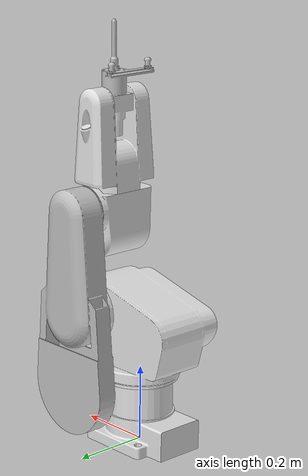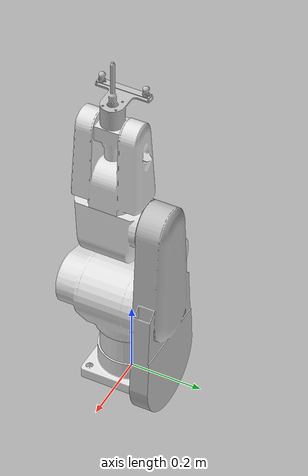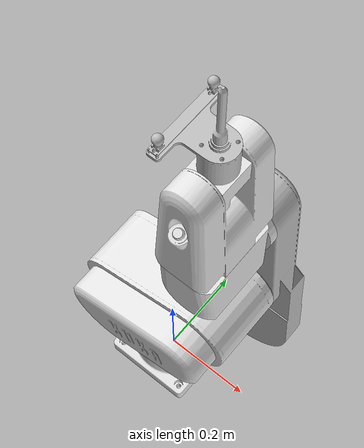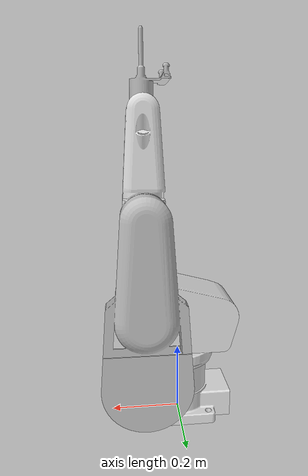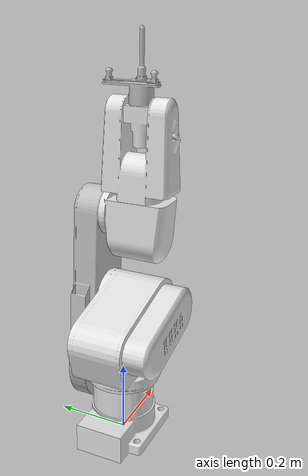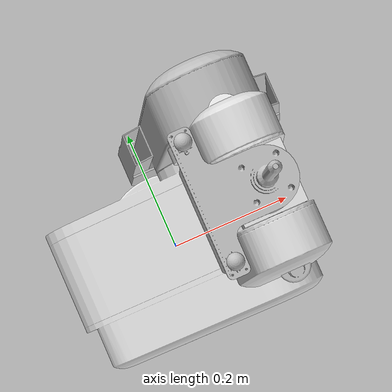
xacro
<?xml version="1.0"?>
<robot xmlns:xacro="http://www.ros.org/wiki/xacro" name="m6r">
    <xacro:arg name="initial_positions_file" default="initial_positions.yaml" />

    <!-- Import m6r urdf file -->
    <xacro:include filename="$(find m6r_description)/urdf/m6r_0110.urdf" />

    <!-- Import control_xacro -->
    <xacro:include filename="m6r.ros2_control.xacro" />

    <xacro:m6r_ros2_control name="FakeSystem" initial_positions_file="$(arg initial_positions_file)"/>

</robot>

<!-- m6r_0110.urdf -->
<robot
  name="m6r">
  <link
    name="base_link">
    <inertial>
      <origin
        xyz="-0.0146959562730705 -1.31808177654722E-09 0.0738790283475741"
        rpy="0 0 0" />
      <mass
        value="5.31276956078926" />
      <inertia
        ixx="0.0254280679798273"
        ixy="-3.83756468568407E-10"
        ixz="-0.00246652568977196"
        iyy="0.0327484488605481"
        iyz="-4.23043782522762E-10"
        izz="0.0305803894465856" />
    </inertial>
    <visual>
      <origin
        xyz="0 0 0"
        rpy="0 0 0" />
      <geometry>
        <mesh
          filename="package://m6r_description/meshes/m6r_0110/base_link.STL" />
      </geometry>
      <material
        name="">
        <color
          rgba="0.894117647058823 0.894117647058823 0.894117647058823 1" />
      </material>
    </visual>
    <collision>
      <origin
        xyz="0 0 0"
        rpy="0 0 0" />
      <geometry>
        <mesh
          filename="package://m6r_description/meshes/m6r_0110/base_link.STL" />
      </geometry>
    </collision>
  </link>
  <link
    name="waist_link">
    <inertial>
      <origin
        xyz="0.0139701613082039 -0.015936284472385 0.132965338967223"
        rpy="0 0 0" />
      <mass
        value="13.4868898164828" />
      <inertia
        ixx="0.103115065826466"
        ixy="-0.0027942922654768"
        ixz="-0.0175187461405487"
        iyy="0.154263710369968"
        iyz="0.00418239915297628"
        izz="0.150904232632326" />
    </inertial>
    <visual>
      <origin
        xyz="0 0 0"
        rpy="0 0 0" />
      <geometry>
        <mesh
          filename="package://m6r_description/meshes/m6r_0110/waist_link.STL" />
      </geometry>
      <material
        name="">
        <color
          rgba="0.894117647058823 0.894117647058823 0.894117647058823 1" />
      </material>
    </visual>
    <collision>
      <origin
        xyz="0 0 0"
        rpy="0 0 0" />
      <geometry>
        <mesh
          filename="package://m6r_description/meshes/m6r_0110/waist_link.STL" />
      </geometry>
    </collision>
  </link>
  <joint
    name="joint1"
    type="revolute">
    <origin
      xyz="0 0 0.175"
      rpy="0 0 0" />
    <parent
      link="base_link" />
    <child
      link="waist_link" />
    <axis
      xyz="0 0 1" />
    <limit
      lower="-3.14"
      upper="3.14"
      effort="50"
      velocity="100" />
  </joint>
  <link
    name="shoulder_link">
    <inertial>
      <origin
        xyz="-0.0393421032855981 0.0417793152023532 0.0773583929062565"
        rpy="0 0 0" />
      <mass
        value="5.239440252985" />
      <inertia
        ixx="0.0539250127743356"
        ixy="1.38922530733157E-06"
        ixz="0.0203431860572253"
        iyy="0.0726126815272468"
        iyz="-2.72845406496887E-06"
        izz="0.0242701394994817" />
    </inertial>
    <visual>
      <origin
        xyz="0 0 0"
        rpy="0 0 0" />
      <geometry>
        <mesh
          filename="package://m6r_description/meshes/m6r_0110/shoulder_link.STL" />
      </geometry>
      <material
        name="">
        <color
          rgba="0.752941176470588 0.752941176470588 0.752941176470588 1" />
      </material>
    </visual>
    <collision>
      <origin
        xyz="0 0 0"
        rpy="0 0 0" />
      <geometry>
        <mesh
          filename="package://m6r_description/meshes/m6r_0110/shoulder_link.STL" />
      </geometry>
    </collision>
  </link>
  <joint
    name="joint2"
    type="revolute">
    <origin
      xyz="0.1 0.094 0.175"
      rpy="0 0.47024 0" />
    <parent
      link="waist_link" />
    <child
      link="shoulder_link" />
    <axis
      xyz="0 1 0" />
    <limit
      lower="-3.14"
      upper="3.14"
      effort="50"
      velocity="100" />
  </joint>
  <link
    name="elbow_link">
    <inertial>
      <origin
        xyz="-0.0324458881612945 -0.0899423500054787 6.19472507663449E-05"
        rpy="0 0 0" />
      <mass
        value="3.1983360651658" />
      <inertia
        ixx="0.0112232922596549"
        ixy="-0.000413394805888793"
        ixz="-6.08808867039753E-08"
        iyy="0.0102793012206642"
        iyz="-6.82240237651006E-08"
        izz="0.0146558013438073" />
    </inertial>
    <visual>
      <origin
        xyz="0 0 0"
        rpy="0 0 0" />
      <geometry>
        <mesh
          filename="package://m6r_description/meshes/m6r_0110/elbow_link.STL" />
      </geometry>
      <material
        name="">
        <color
          rgba="0.894117647058823 0.894117647058823 0.894117647058823 1" />
      </material>
    </visual>
    <collision>
      <origin
        xyz="0 0 0"
        rpy="0 0 0" />
      <geometry>
        <mesh
          filename="package://m6r_description/meshes/m6r_0110/elbow_link.STL" />
      </geometry>
    </collision>
  </link>
  <joint
    name="joint3"
    type="revolute">
    <origin
      xyz="-0.12007 0 0.23624"
      rpy="3.1416 -1.1006 3.1416" />
    <parent
      link="shoulder_link" />
    <child
      link="elbow_link" />
    <axis
      xyz="0 1 0" />
    <limit
      lower="-3.14"
      upper="3.14"
      effort="50"
      velocity="100" />
  </joint>
  <link
    name="forearm_link">
    <inertial>
      <origin
        xyz="0.109668118306563 -4.13962910319617E-05 6.31873191234977E-05"
        rpy="0 0 0" />
      <mass
        value="3.39321721908934" />
      <inertia
        ixx="0.0140130697605679"
        ixy="9.48980902634125E-06"
        ixz="-9.8999024639953E-07"
        iyy="0.0190947215800425"
        iyz="-1.85475880373875E-07"
        izz="0.0280985723226197" />
    </inertial>
    <visual>
      <origin
        xyz="0 0 0"
        rpy="0 0 0" />
      <geometry>
        <mesh
          filename="package://m6r_description/meshes/m6r_0110/forearm_link.STL" />
      </geometry>
      <material
        name="">
        <color
          rgba="0.894117647058823 0.894117647058823 0.894117647058823 1" />
      </material>
    </visual>
    <collision>
      <origin
        xyz="0 0 0"
        rpy="0 0 0" />
      <geometry>
        <mesh
          filename="package://m6r_description/meshes/m6r_0110/forearm_link.STL" />
      </geometry>
    </collision>
  </link>
  <joint
    name="joint4"
    type="revolute">
    <origin
      xyz="0.045 -0.094 0"
      rpy="0 0 0" />
    <parent
      link="elbow_link" />
    <child
      link="forearm_link" />
    <axis
      xyz="1 0 0" />
    <limit
      lower="-3.14"
      upper="3.14"
      effort="50"
      velocity="100" />
  </joint>
  <link
    name="wriste_pitch">
    <inertial>
      <origin
        xyz="-0.0171303931049135 5.18595840840373E-15 6.24160410160612E-05"
        rpy="0 0 0" />
      <mass
        value="0.295781549289781" />
      <inertia
        ixx="0.000182023567605451"
        ixy="5.17679923091508E-20"
        ixz="3.12977259322246E-20"
        iyy="0.000310680621706772"
        iyz="-2.4319822037332E-20"
        izz="0.000308656048501104" />
    </inertial>
    <visual>
      <origin
        xyz="0 0 0"
        rpy="0 0 0" />
      <geometry>
        <mesh
          filename="package://m6r_description/meshes/m6r_0110/wriste_pitch.STL" />
      </geometry>
      <material
        name="">
        <color
          rgba="0.894117647058823 0.894117647058823 0.894117647058823 1" />
      </material>
    </visual>
    <collision>
      <origin
        xyz="0 0 0"
        rpy="0 0 0" />
      <geometry>
        <mesh
          filename="package://m6r_description/meshes/m6r_0110/wriste_pitch.STL" />
      </geometry>
    </collision>
  </link>
  <joint
    name="joint5"
    type="revolute">
    <origin
      xyz="0.225 0 0"
      rpy="0 0 0" />
    <parent
      link="forearm_link" />
    <child
      link="wriste_pitch" />
    <axis
      xyz="0 1 0" />
    <limit
      lower="-3.14"
      upper="3.14"
      effort="50"
      velocity="100" />
  </joint>
  <link
    name="wriste_roll">
    <inertial>
      <origin
        xyz="-0.14586 1.4401E-06 -0.0083042"
        rpy="0 0 0" />
      <mass
        value="0.24032" />
      <inertia
        ixx="0.00019091"
        ixy="6.6371E-09"
        ixz="-3.8831E-07"
        iyy="0.00015506"
        iyz="-2.8116E-09"
        izz="0.00019702" />
    </inertial>
    <visual>
      <origin
        xyz="0 0 0"
        rpy="0 0 0" />
      <geometry>
        <mesh
          filename="package://m6r_description/meshes/m6r_0110/wriste_roll.STL" />
      </geometry>
      <material
        name="">
        <color
          rgba="0.75294 0.75294 0.75294 1" />
      </material>
    </visual>
    <collision>
      <origin
        xyz="0 0 0"
        rpy="0 0 0" />
      <geometry>
        <mesh
          filename="package://m6r_description/meshes/m6r_0110/wriste_roll.STL" />
      </geometry>
    </collision>
  </link>
  <joint
    name="joint6"
    type="revolute">
    <origin
      xyz="0.208 0 6.2416E-05"
      rpy="3.1416 0 0" />
    <parent
      link="wriste_pitch" />
    <child
      link="wriste_roll" />
    <axis
      xyz="-1 0 0" />
    <limit
      lower="-3.14"
      upper="3.14"
      effort="50"
      velocity="100" />
  </joint>
</robot>
